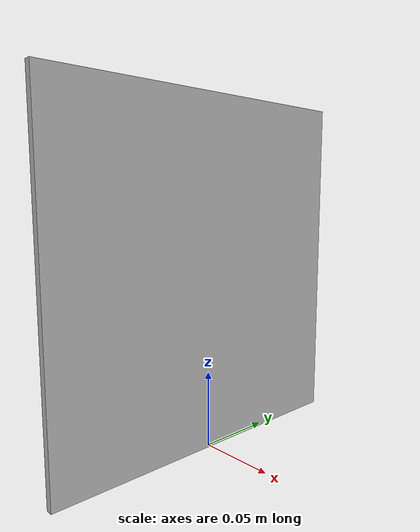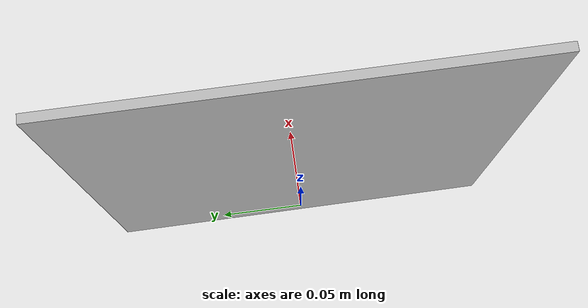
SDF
<?xml version="1.0" ?><sdf version="1.6">
  <model name="Marker13">
    <static>true</static>
    <link name="link">
      <visual name="visual">
        <geometry>
          <mesh>
            <uri>model://marker13/meshes/Marker13.dae</uri>
          <scale>0.45 0.45 0.45</scale></mesh>
        </geometry>
      </visual>
    </link>
  </model>
</sdf>
